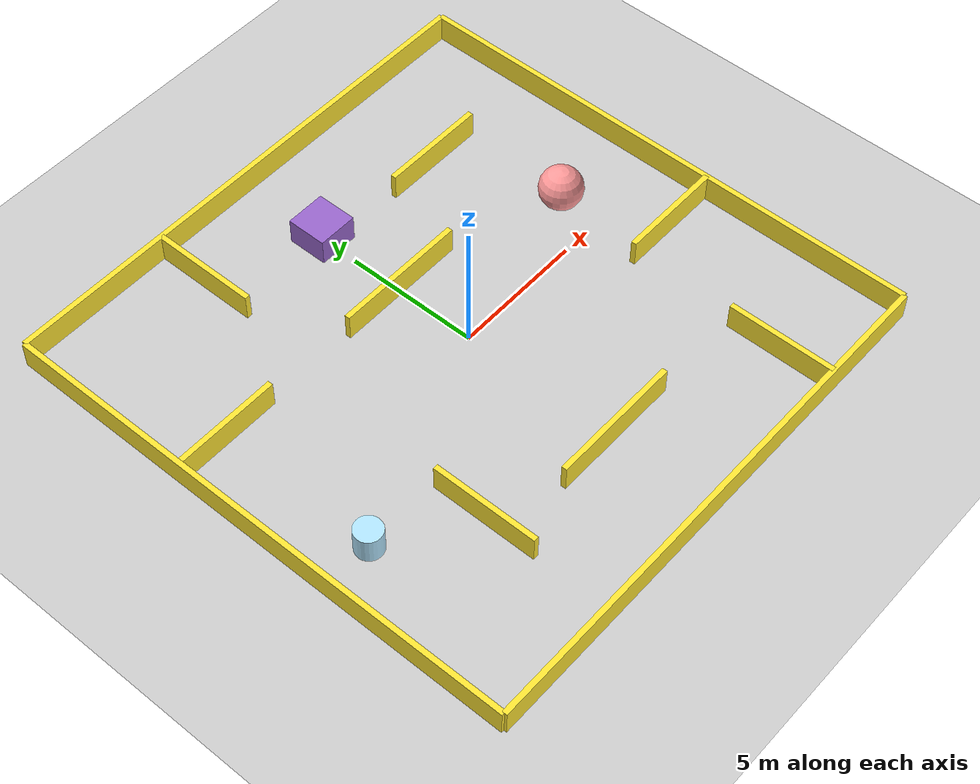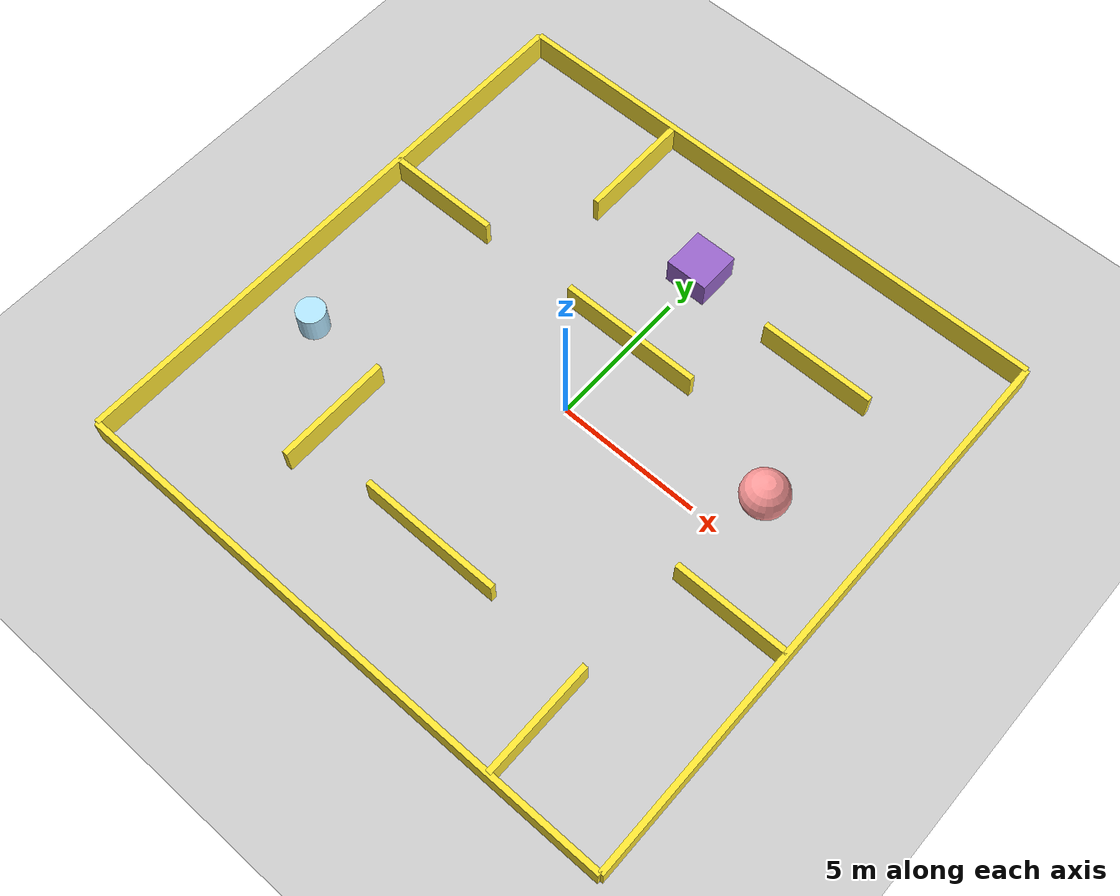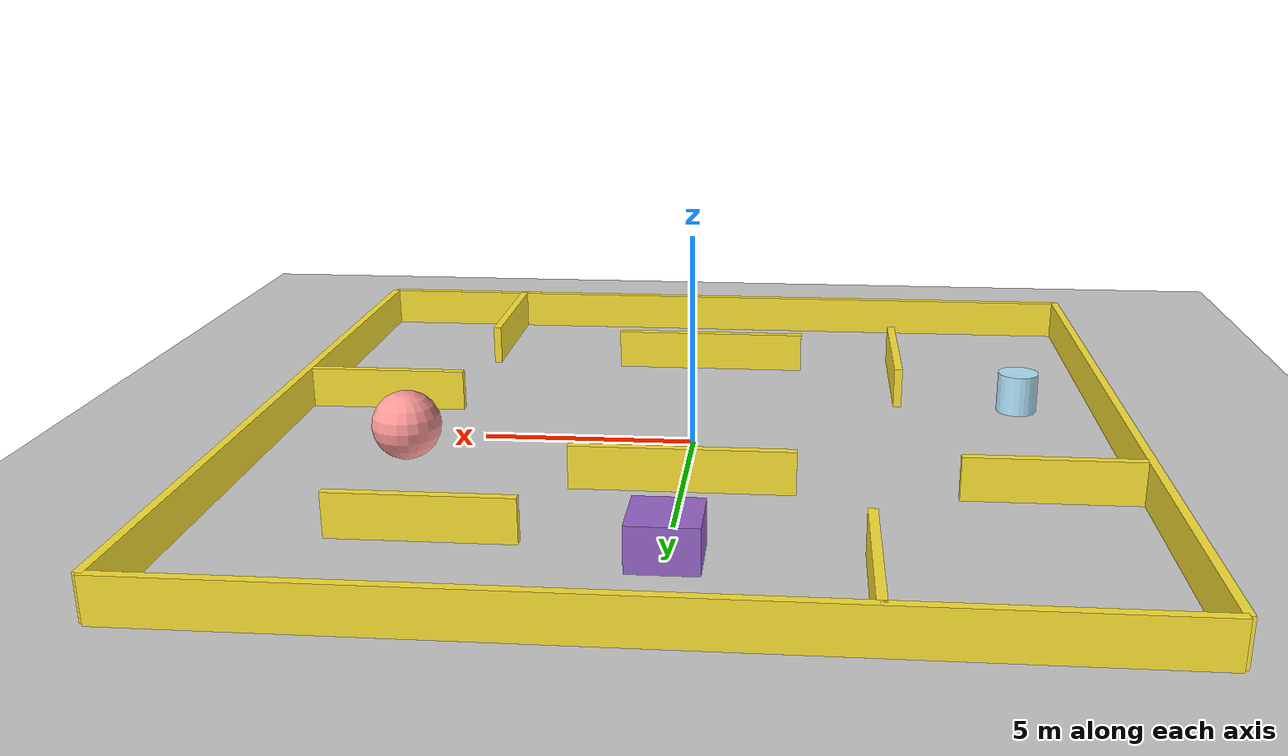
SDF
<?xml version="1.0" ?>
<sdf version="1.9">

    <!-- ======================================================================
        [WORLD] WORLD MODEL
    ======================================================================= -->
    <world name="demo">

        <!-- ─────────────────────────────────────────────
            [PHYSICS]
        ────────────────────────────────────────────── -->
        <scene>
            <shadows>0</shadows>
        </scene>
        <physics name="1ms" type="ignored">
            <max_step_size>0.001</max_step_size>
            <real_time_factor>1.0</real_time_factor>
        </physics>

        <!-- ─────────────────────────────────────────────
            [PLUGIN] PHYSICS
        ────────────────────────────────────────────── -->
        <plugin filename="ignition-gazebo-physics-system"
                name="ignition::gazebo::systems::Physics">
        </plugin>

        <!-- ─────────────────────────────────────────────
            [PLUGIN] USER COMMANDS
        ────────────────────────────────────────────── -->
        <plugin filename="ignition-gazebo-user-commands-system"
                name="ignition::gazebo::systems::UserCommands">
        </plugin>

        <!-- ─────────────────────────────────────────────
            [PLUGIN] SCENE BROADCASTER
        ────────────────────────────────────────────── -->
        <plugin filename="ignition-gazebo-scene-broadcaster-system"
                name="ignition::gazebo::systems::SceneBroadcaster">
        </plugin>

        <!-- ─────────────────────────────────────────────
            [PLUGIN] SENSORS
        ────────────────────────────────────────────── -->
        <plugin filename="libignition-gazebo-sensors-system.so"
                name="ignition::gazebo::systems::Sensors">
            <render_engine>ogre2</render_engine>
        </plugin>

        <!-- ─────────────────────────────────────────────
            [PLUGIN] IMU
        ────────────────────────────────────────────── -->
        <plugin filename="libignition-gazebo-imu-system"
                name="ignition::gazebo::systems::Imu">
        </plugin>

        <!-- ─────────────────────────────────────────────
            [LIGHT] SUN
        ────────────────────────────────────────────── -->
        <light name="sun" type="directional">
            <cast_shadows>true</cast_shadows>
            <pose>0 0 10 0 0 0</pose>
            <diffuse>1 1 1 1</diffuse>
            <specular>0.5 0.5 0.5 1</specular>
            <attenuation>
                <range>1000</range>
                <constant>0.9</constant>
                <linear>0.01</linear>
                <quadratic>0.001</quadratic>
            </attenuation>
            <direction>-0.5 0.1 -0.9</direction>
        </light>

        <!-- ─────────────────────────────────────────────
            [MODEL] GROUND PLANE
        ────────────────────────────────────────────── -->
        <model name="ground_plane">
            <static>true</static>
            <link name="link">
                <collision name="collision">
                    <geometry>
                        <plane>
                            <normal>0 0 1</normal>
                            <size>100 100</size>
                        </plane>
                    </geometry>
                </collision>

                <visual name="visual">
                    <geometry>
                        <plane>
                            <normal>0 0 1</normal>
                            <size>100 100</size>
                        </plane>
                    </geometry>
                    <material>
                        <ambient>0.8 0.8 0.8 1</ambient>
                        <diffuse>0.8 0.8 0.8 1</diffuse>
                        <specular>0.8 0.8 0.8 1</specular>
                    </material>
                </visual>
            </link>
        </model>

        <!-- ─────────────────────────────────────────────
            [MODEL] WALLS
        ────────────────────────────────────────────── -->
        <model name="wall">
            <static>true</static>
            <pose>0 0 0 0 0 0</pose>

            <link name="wall_1">
                <pose>0 -10 0.5 0 0 0</pose>
                <collision name="c">
                    <geometry>
                        <box>
                            <size>20 0.2 1</size>
                        </box>
                    </geometry>
                </collision>
                <visual name="v">
                    <geometry>
                        <box>
                            <size>20 0.2 1</size>
                        </box>
                    </geometry>
                    <material>
                        <ambient>1 0.9 0.1 1</ambient>
                        <diffuse>1 0.9 0.2 1</diffuse>
                        <specular>0.1 0.1 0.1 1</specular>
                    </material>
                </visual>
            </link>

            <joint name="wall_2_joint" type="fixed">
                <parent>wall_1</parent>
                <child>wall_2</child>
            </joint>

            <link name="wall_2">
                <pose>0 10 0.5 0 0 0</pose>
                <collision name="c">
                    <geometry>
                        <box>
                            <size>20 0.2 1</size>
                        </box>
                    </geometry>
                </collision>
                <visual name="v">
                    <geometry>
                        <box>
                            <size>20 0.2 1</size>
                        </box>
                    </geometry>
                    <material>
                        <ambient>1 0.9 0.1 1</ambient>
                        <diffuse>1 0.9 0.2 1</diffuse>
                        <specular>0.1 0.1 0.1 1</specular>
                    </material>
                </visual>
            </link>

            <joint name="wall_3_joint" type="fixed">
                <parent>wall_1</parent>
                <child>wall_3</child>
            </joint>

            <link name="wall_3">
                <pose>-10 0 0.5 0 0 0</pose>
                <collision name="c">
                    <geometry>
                        <box>
                            <size>0.2 20 1</size>
                        </box>
                    </geometry>
                </collision>
                <visual name="v">
                    <geometry>
                        <box>
                            <size>0.2 20 1</size>
                        </box>
                    </geometry>
                    <material>
                        <ambient>1 0.9 0.1 1</ambient>
                        <diffuse>1 0.9 0.2 1</diffuse>
                        <specular>0.1 0.1 0.1 1</specular>
                    </material>
                </visual>
            </link>

            <joint name="wall_4_joint" type="fixed">
                <parent>wall_1</parent>
                <child>wall_4</child>
            </joint>

            <link name="wall_4">
                <pose>10 0 0.5 0 0 0</pose>
                <collision name="c">
                    <geometry>
                        <box>
                            <size>0.2 20 1</size>
                        </box>
                    </geometry>
                </collision>
                <visual name="v">
                    <geometry>
                        <box>
                            <size>0.2 20 1</size>
                        </box>
                    </geometry>
                    <material>
                        <ambient>1 0.9 0.1 1</ambient>
                        <diffuse>1 0.9 0.2 1</diffuse>
                        <specular>0.1 0.1 0.1 1</specular>
                    </material>
                </visual>
            </link>

            <joint name="wall_5_joint" type="fixed">
                <parent>wall_1</parent>
                <child>wall_5</child>
            </joint>

            <link name="wall_5">
                <pose>0 3 0.5 0 0 0</pose>
                <collision name="c">
                    <geometry>
                        <box>
                            <size>5 0.2 1</size>
                        </box>
                    </geometry>
                </collision>
                <visual name="v">
                    <geometry>
                        <box>
                            <size>5 0.2 1</size>
                        </box>
                    </geometry>
                    <material>
                        <ambient>1 0.9 0.1 1</ambient>
                        <diffuse>1 0.9 0.2 1</diffuse>
                        <specular>0.1 0.1 0.1 1</specular>
                    </material>
                </visual>
            </link>

            <joint name="wall_6_joint" type="fixed">
                <parent>wall_1</parent>
                <child>wall_6</child>
            </joint>

            <link name="wall_6">
                <pose>0 -6 0.5 0 0 0</pose>
                <collision name="c">
                    <geometry>
                        <box>
                            <size>5 0.2 1</size>
                        </box>
                    </geometry>
                </collision>
                <visual name="v">
                    <geometry>
                        <box>
                            <size>5 0.2 1</size>
                        </box>
                    </geometry>
                    <material>
                        <ambient>1 0.9 0.1 1</ambient>
                        <diffuse>1 0.9 0.2 1</diffuse>
                        <specular>0.1 0.1 0.1 1</specular>
                    </material>
                </visual>
            </link>

            <joint name="wall_7_joint" type="fixed">
                <parent>wall_1</parent>
                <child>wall_7</child>
            </joint>

            <link name="wall_7">
                <pose>6 -8 0.5 0 0 0</pose>
                <collision name="c">
                    <geometry>
                        <box>
                            <size>0.2 4 1</size>
                        </box>
                    </geometry>
                </collision>
                <visual name="v">
                    <geometry>
                        <box>
                            <size>0.2 4 1</size>
                        </box>
                    </geometry>
                    <material>
                        <ambient>1 0.9 0.1 1</ambient>
                        <diffuse>1 0.9 0.2 1</diffuse>
                        <specular>0.1 0.1 0.1 1</specular>
                    </material>
                </visual>
            </link>

            <joint name="wall_8_joint" type="fixed">
                <parent>wall_1</parent>
                <child>wall_8</child>
            </joint>

            <link name="wall_8">
                <pose>-4 8 0.5 0 0 0</pose>
                <collision name="c">
                    <geometry>
                        <box>
                            <size>0.2 4 1</size>
                        </box>
                    </geometry>
                </collision>
                <visual name="v">
                    <geometry>
                        <box>
                            <size>0.2 4 1</size>
                        </box>
                    </geometry>
                    <material>
                        <ambient>1 0.9 0.1 1</ambient>
                        <diffuse>1 0.9 0.2 1</diffuse>
                        <specular>0.1 0.1 0.1 1</specular>
                    </material>
                </visual>
            </link>

            <joint name="wall_9_joint" type="fixed">
                <parent>wall_1</parent>
                <child>wall_9</child>
            </joint>

            <link name="wall_9">
                <pose>-8 3 0.5 0 0 0</pose>
                <collision name="c">
                    <geometry>
                        <box>
                            <size>4 0.2 1</size>
                        </box>
                    </geometry>
                </collision>
                <visual name="v">
                    <geometry>
                        <box>
                            <size>4 0.2 1</size>
                        </box>
                    </geometry>
                    <material>
                        <ambient>1 0.9 0.1 1</ambient>
                        <diffuse>1 0.9 0.2 1</diffuse>
                        <specular>0.1 0.1 0.1 1</specular>
                    </material>
                </visual>
            </link>

            <joint name="wall_10_joint" type="fixed">
                <parent>wall_1</parent>
                <child>wall_10</child>
            </joint>

            <link name="wall_10">
                <pose>8 -2 0.5 0 0 0</pose>
                <collision name="c">
                    <geometry>
                        <box>
                            <size>4 0.2 1</size>
                        </box>
                    </geometry>
                </collision>
                <visual name="v">
                    <geometry>
                        <box>
                            <size>4 0.2 1</size>
                        </box>
                    </geometry>
                    <material>
                        <ambient>1 0.9 0.1 1</ambient>
                        <diffuse>1 0.9 0.2 1</diffuse>
                        <specular>0.1 0.1 0.1 1</specular>
                    </material>
                </visual>
            </link>

            <joint name="wall_11_joint" type="fixed">
                <parent>wall_1</parent>
                <child>wall_11</child>
            </joint>

            <link name="wall_11">
                <pose>-5 -5 0.5 0 0 0</pose>
                <collision name="c">
                    <geometry>
                        <box>
                            <size>0.2 4 1</size>
                        </box>
                    </geometry>
                </collision>
                <visual name="v">
                    <geometry>
                        <box>
                            <size>0.2 4 1</size>
                        </box>
                    </geometry>
                    <material>
                        <ambient>1 0.9 0.1 1</ambient>
                        <diffuse>1 0.9 0.2 1</diffuse>
                        <specular>0.1 0.1 0.1 1</specular>
                    </material>
                </visual>
            </link>

            <joint name="wall_12_joint" type="fixed">
                <parent>wall_1</parent>
                <child>wall_12</child>
            </joint>

            <link name="wall_12">
                <pose>5 6 0.5 0 0 0</pose>
                <collision name="c">
                    <geometry>
                        <box>
                            <size>4 0.2 1</size>
                        </box>
                    </geometry>
                </collision>
                <visual name="v">
                    <geometry>
                        <box>
                            <size>4 0.2 1</size>
                        </box>
                    </geometry>
                    <material>
                        <ambient>1 0.9 0.1 1</ambient>
                        <diffuse>1 0.9 0.2 1</diffuse>
                        <specular>0.1 0.1 0.1 1</specular>
                    </material>
                </visual>
            </link>

        </model>

        <!-- ─────────────────────────────────────────────
            [MODEL] OBSTACLE
        ────────────────────────────────────────────── -->
        <model name="obstacle">
            <static>true</static>
            <pose>0 0 0 0 0 0</pose>

            <link name="obstacle_1">
                <pose>0 6.5 0.5 0 0 0</pose>
                <collision name="c">
                    <geometry>
                        <box>
                            <size>1.5 1.5 1</size>
                        </box>
                    </geometry>
                </collision>
                <visual name="v">
                    <geometry>
                        <box>
                            <size>1.5 1.5 1</size>
                        </box>
                    </geometry>
                    <material>
                        <ambient>0.8 0.7 0 1</ambient>
                        <diffuse>0.6 0.4 0.8 1</diffuse>
                        <specular>0.2 0.2 0.2 1</specular>
                    </material>
                </visual>
            </link>

            <joint name="obstacle_2_joint" type="fixed">
                <parent>obstacle_1</parent>
                <child>obstacle_2</child>
            </joint>

            <link name="obstacle_2">
                <pose>-8 -3 0.5 0 0 0</pose>
                <collision name="c">
                    <geometry>
                        <cylinder>
                            <length>1.0</length>
                            <radius>0.5</radius>
                        </cylinder>
                    </geometry>
                </collision>
                <visual name="v">
                    <geometry>
                        <cylinder>
                            <length>1.0</length>
                            <radius>0.5</radius>
                        </cylinder>
                    </geometry>
                    <material>
                        <ambient>0.8 0.7 0 1</ambient>
                        <diffuse>0.7 0.9 1 1</diffuse>
                        <specular>0.2 0.2 0.2 1</specular>
                    </material>
                </visual>
            </link>

            <joint name="obstacle_3_joint" type="fixed">
                <parent>obstacle_1</parent>
                <child>obstacle_3</child>
            </joint>

            <link name="obstacle_3">
                <pose>6.5 1.5 0.8 0 0 0</pose>
                <collision name="c">
                <geometry>
                    <sphere>
                        <radius>0.8</radius>
                    </sphere>
                </geometry>
                </collision>
                <visual name="v">
                    <geometry>
                        <sphere>
                            <radius>0.8</radius>
                        </sphere>
                    </geometry>
                    <material>
                        <ambient>0.9 0.5 0.5 1</ambient>
                        <diffuse>1 0.6 0.6 1</diffuse>
                        <specular>0.1 0.1 0.1 1</specular>
                    </material>
                </visual>
            </link>

        </model>

    </world>

</sdf>
